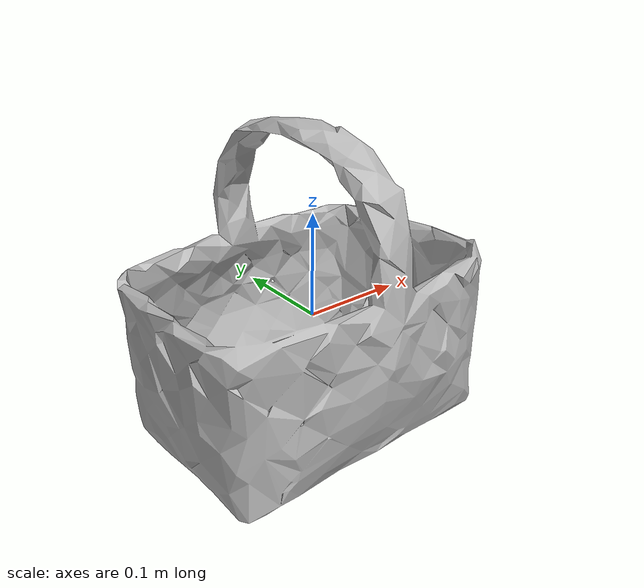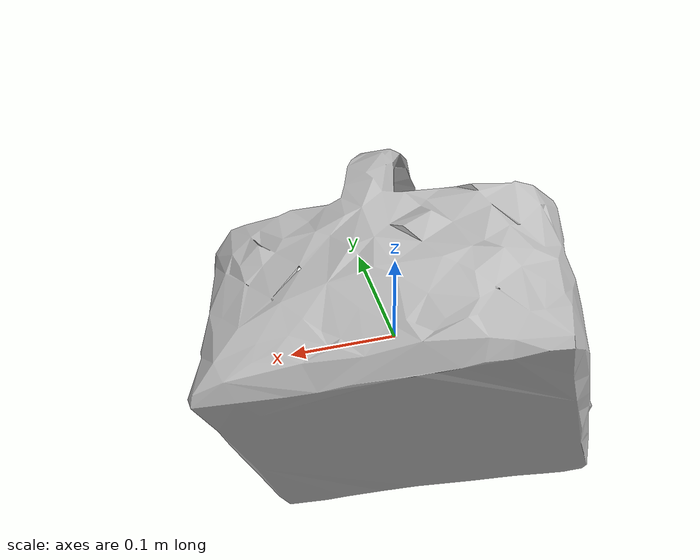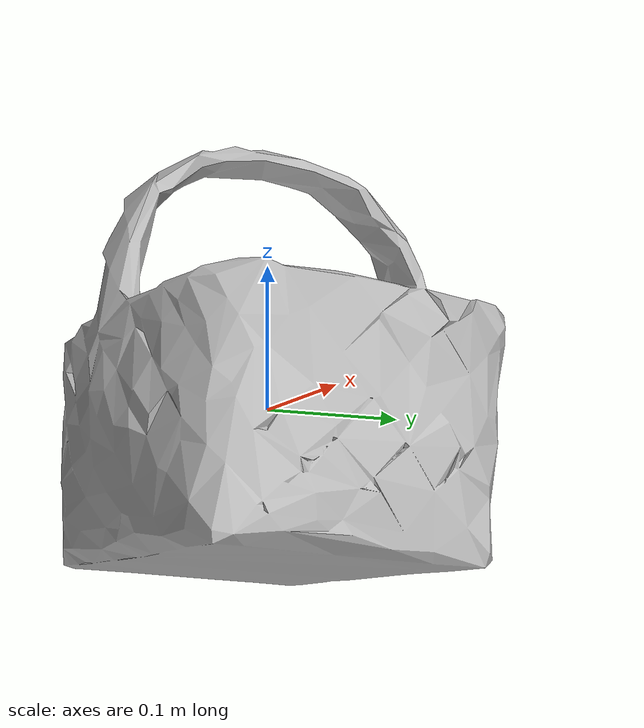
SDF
<?xml version="1.0" ?>
<sdf version="1.4">
    <model name='handbag_large'>
      <link name='link'>
        <pose>0 0 0 0 0 0</pose>
        <inertial>
          <mass>0.5</mass>
          <inertia>
            <ixx>0.0006181</ixx>
            <ixy>0</ixy>
            <ixz>0</ixz>
            <iyy>0.007504</iyy>
            <iyz>0</iyz>
            <izz>0.006531</izz>
          </inertia>
        </inertial>
        <visual name='handbag_large'>
          <pose>0.0 0.0 0.0 0 0 0</pose>
          <geometry>
            <mesh>
              <uri>model://handbag_large/meshes/handbag_large.dae</uri>
            </mesh>
          </geometry>

        </visual>
        <collision name='handbag_large'>
          <pose>0.0 0.0 0.0 0 0 0</pose>
          <geometry>
            <mesh>
              <uri>model://handbag_large/meshes/handbag_large.dae</uri>
            </mesh>
          </geometry>
          <max_contacts>10</max_contacts>
          <surface>
            <bounce>
              <restitution_coefficient>0.2</restitution_coefficient>
              <threshold>0</threshold>
            </bounce>
            <friction>
              <ode/>
            </friction>
            <contact>
              <ode/>
            </contact>
          </surface>
        </collision>
        <velocity_decay>
          <linear>0</linear>
          <angular>0</angular>
        </velocity_decay>
        <self_collide>0</self_collide>
        <kinematic>0</kinematic>
        <gravity>1</gravity>
      </link>
      <static>0</static>
    </model>
</sdf>
